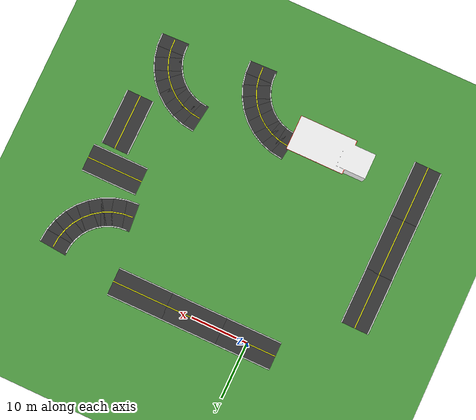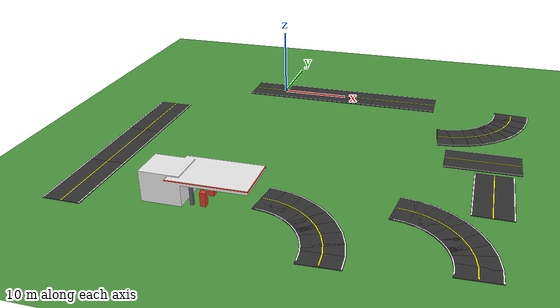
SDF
<sdf version="1.7">
 <model name="gas_station_2">
  <static>true</static>
  <model name="ground_plane">
   <static>1</static>
   <link name="link">
    <collision name="collision">
     <geometry><plane><normal>0 0 1</normal><size>100 100</size></plane></geometry>
     <surface>
      <contact><collide_bitmask>65535</collide_bitmask></contact>
      <friction><ode><mu>100</mu><mu2>50</mu2></ode></friction>
     </surface>
    </collision>
    <visual name="visual">
     <cast_shadows>0</cast_shadows>
     <geometry><plane><normal>0 0 1</normal><size>100 100</size></plane></geometry>
     <material>
      <script><uri>file://media/materials/scripts/gazebo.material</uri><name>Gazebo/Grass</name></script>
     </material>
    </visual>
   </link>
  </model>
  <model name="road_straight">
   <static>1</static>
   <link name="link">
    <collision name="collision"><geometry><box><size>10 5 0.1</size></box></geometry></collision>
    <visual name="visual_surface">
     <geometry><box><size>10 5 0.1</size></box></geometry>
     <material>
      <ambient>0.2 0.2 0.2 1</ambient>
      <diffuse>0.2 0.2 0.2 1</diffuse>
      <specular>0.1 0.1 0.1 1</specular>
     </material>
    </visual>
    <visual name="visual_center_line">
     <pose>0 0 0.051 0 -0 0</pose>
     <geometry><box><size>10 0.15 0.001</size></box></geometry>
     <material><ambient>1 1 0 1</ambient><diffuse>1 1 0 1</diffuse></material>
    </visual>
    <visual name="visual_left_line">
     <pose>0 2.4 0.051 0 -0 0</pose>
     <geometry><box><size>10 0.15 0.001</size></box></geometry>
     <material><ambient>1 1 1 1</ambient><diffuse>1 1 1 1</diffuse></material>
    </visual>
    <visual name="visual_right_line">
     <pose>0 -2.4 0.051 0 -0 0</pose>
     <geometry><box><size>10 0.15 0.001</size></box></geometry>
     <material><ambient>1 1 1 1</ambient><diffuse>1 1 1 1</diffuse></material>
    </visual>
   </link>
   <pose>-0.248347 0.000542 0 0 -0 0</pose>
  </model>
  <model name="road_straight_clone">
   <static>1</static>
   <link name="link">
    <collision name="collision"><geometry><box><size>10 5 0.1</size></box></geometry></collision>
    <visual name="visual_surface">
     <geometry><box><size>10 5 0.1</size></box></geometry>
     <material>
      <ambient>0.2 0.2 0.2 1</ambient>
      <diffuse>0.2 0.2 0.2 1</diffuse>
      <specular>0.1 0.1 0.1 1</specular>
     </material>
    </visual>
    <visual name="visual_center_line">
     <pose>0 0 0.051 0 -0 0</pose>
     <geometry><box><size>10 0.15 0.001</size></box></geometry>
     <material><ambient>1 1 0 1</ambient><diffuse>1 1 0 1</diffuse></material>
    </visual>
    <visual name="visual_left_line">
     <pose>0 2.4 0.051 0 -0 0</pose>
     <geometry><box><size>10 0.15 0.001</size></box></geometry>
     <material><ambient>1 1 1 1</ambient><diffuse>1 1 1 1</diffuse></material>
    </visual>
    <visual name="visual_right_line">
     <pose>0 -2.4 0.051 0 -0 0</pose>
     <geometry><box><size>10 0.15 0.001</size></box></geometry>
     <material><ambient>1 1 1 1</ambient><diffuse>1 1 1 1</diffuse></material>
    </visual>
   </link>
   <pose>9.70219 0.000539 0 0 -0 0</pose>
  </model>
  <model name="road_straight_clone_clone">
   <static>1</static>
   <link name="link">
    <collision name="collision"><geometry><box><size>10 5 0.1</size></box></geometry></collision>
    <visual name="visual_surface">
     <geometry><box><size>10 5 0.1</size></box></geometry>
     <material>
      <ambient>0.2 0.2 0.2 1</ambient>
      <diffuse>0.2 0.2 0.2 1</diffuse>
      <specular>0.1 0.1 0.1 1</specular>
     </material>
    </visual>
    <visual name="visual_center_line">
     <pose>0 0 0.051 0 -0 0</pose>
     <geometry><box><size>10 0.15 0.001</size></box></geometry>
     <material><ambient>1 1 0 1</ambient><diffuse>1 1 0 1</diffuse></material>
    </visual>
    <visual name="visual_left_line">
     <pose>0 2.4 0.051 0 -0 0</pose>
     <geometry><box><size>10 0.15 0.001</size></box></geometry>
     <material><ambient>1 1 1 1</ambient><diffuse>1 1 1 1</diffuse></material>
    </visual>
    <visual name="visual_right_line">
     <pose>0 -2.4 0.051 0 -0 0</pose>
     <geometry><box><size>10 0.15 0.001</size></box></geometry>
     <material><ambient>1 1 1 1</ambient><diffuse>1 1 1 1</diffuse></material>
    </visual>
   </link>
   <pose>19.59 0.00396 0 0 -0 0</pose>
  </model>
  <model name="road_curved">
   <static>1</static>
   <link name="link">
    <visual name="visual_segment_0">
     <pose>0.8716 0.0381 0 0 -0 0.0873</pose>
     <geometry><box><size>2.2789 5 0.1</size></box></geometry>
     <material>
      <ambient>0.2 0.2 0.2 1</ambient>
      <diffuse>0.2 0.2 0.2 1</diffuse>
      <specular>0.1 0.1 0.1 1</specular>
     </material>
    </visual>
    <collision name="collision_segment_0">
     <pose>0.8716 0.0381 0 0 -0 0.0873</pose>
     <geometry><box><size>2.2789 5 0.1</size></box></geometry>
    </collision>
    <visual name="visual_center_line_0">
     <pose>0.8716 0.0381 0.051 0 -0 0.0873</pose>
     <geometry><box><size>1.7931 0.15 0.001</size></box></geometry>
     <material><ambient>1 1 0 1</ambient><diffuse>1 1 0 1</diffuse></material>
    </visual>
    <visual name="visual_inner_line_0">
     <pose>0.6624 2.4289 0.051 0 -0 0.0873</pose>
     <geometry><box><size>1.3748 0.15 0.001</size></box></geometry>
     <material><ambient>1 1 1 1</ambient><diffuse>1 1 1 1</diffuse></material>
    </visual>
    <visual name="visual_outer_line_0">
     <pose>1.0807 -2.3528 0.051 0 -0 0.0873</pose>
     <geometry><box><size>2.2115 0.15 0.001</size></box></geometry>
     <material><ambient>1 1 1 1</ambient><diffuse>1 1 1 1</diffuse></material>
    </visual>
    <visual name="visual_segment_1">
     <pose>2.5882 0.3407 0 0 -0 0.2618</pose>
     <geometry><box><size>2.2789 5 0.1</size></box></geometry>
     <material>
      <ambient>0.2 0.2 0.2 1</ambient>
      <diffuse>0.2 0.2 0.2 1</diffuse>
      <specular>0.1 0.1 0.1 1</specular>
     </material>
    </visual>
    <collision name="collision_segment_1">
     <pose>2.5882 0.3407 0 0 -0 0.2618</pose>
     <geometry><box><size>2.2789 5 0.1</size></box></geometry>
    </collision>
    <visual name="visual_center_line_1">
     <pose>2.5882 0.3407 0.051 0 -0 0.2618</pose>
     <geometry><box><size>1.7931 0.15 0.001</size></box></geometry>
     <material><ambient>1 1 0 1</ambient><diffuse>1 1 0 1</diffuse></material>
    </visual>
    <visual name="visual_inner_line_1">
     <pose>1.967 2.659 0.051 0 -0 0.2618</pose>
     <geometry><box><size>1.3748 0.15 0.001</size></box></geometry>
     <material><ambient>1 1 1 1</ambient><diffuse>1 1 1 1</diffuse></material>
    </visual>
    <visual name="visual_outer_line_1">
     <pose>3.2094 -1.9775 0.051 0 -0 0.2618</pose>
     <geometry><box><size>2.2115 0.15 0.001</size></box></geometry>
     <material><ambient>1 1 1 1</ambient><diffuse>1 1 1 1</diffuse></material>
    </visual>
    <visual name="visual_segment_2">
     <pose>4.2262 0.9369 0 0 -0 0.4363</pose>
     <geometry><box><size>2.2789 5 0.1</size></box></geometry>
     <material>
      <ambient>0.2 0.2 0.2 1</ambient>
      <diffuse>0.2 0.2 0.2 1</diffuse>
      <specular>0.1 0.1 0.1 1</specular>
     </material>
    </visual>
    <collision name="collision_segment_2">
     <pose>4.2262 0.9369 0 0 -0 0.4363</pose>
     <geometry><box><size>2.2789 5 0.1</size></box></geometry>
    </collision>
    <visual name="visual_center_line_2">
     <pose>4.2262 0.9369 0.051 0 -0 0.4363</pose>
     <geometry><box><size>1.7931 0.15 0.001</size></box></geometry>
     <material><ambient>1 1 0 1</ambient><diffuse>1 1 0 1</diffuse></material>
    </visual>
    <visual name="visual_inner_line_2">
     <pose>3.2119 3.1121 0.051 0 -0 0.4363</pose>
     <geometry><box><size>1.3748 0.15 0.001</size></box></geometry>
     <material><ambient>1 1 1 1</ambient><diffuse>1 1 1 1</diffuse></material>
    </visual>
    <visual name="visual_outer_line_2">
     <pose>5.2405 -1.2382 0.051 0 -0 0.4363</pose>
     <geometry><box><size>2.2115 0.15 0.001</size></box></geometry>
     <material><ambient>1 1 1 1</ambient><diffuse>1 1 1 1</diffuse></material>
    </visual>
    <visual name="visual_segment_3">
     <pose>5.7358 1.8085 0 0 -0 0.6109</pose>
     <geometry><box><size>2.2789 5 0.1</size></box></geometry>
     <material>
      <ambient>0.2 0.2 0.2 1</ambient>
      <diffuse>0.2 0.2 0.2 1</diffuse>
      <specular>0.1 0.1 0.1 1</specular>
     </material>
    </visual>
    <collision name="collision_segment_3">
     <pose>5.7358 1.8085 0 0 -0 0.6109</pose>
     <geometry><box><size>2.2789 5 0.1</size></box></geometry>
    </collision>
    <visual name="visual_center_line_3">
     <pose>5.7358 1.8085 0.051 0 -0 0.6109</pose>
     <geometry><box><size>1.7931 0.15 0.001</size></box></geometry>
     <material><ambient>1 1 0 1</ambient><diffuse>1 1 0 1</diffuse></material>
    </visual>
    <visual name="visual_inner_line_3">
     <pose>4.3592 3.7744 0.051 0 -0 0.6109</pose>
     <geometry><box><size>1.3748 0.15 0.001</size></box></geometry>
     <material><ambient>1 1 1 1</ambient><diffuse>1 1 1 1</diffuse></material>
    </visual>
    <visual name="visual_outer_line_3">
     <pose>7.1123 -0.1575 0.051 0 -0 0.6109</pose>
     <geometry><box><size>2.2115 0.15 0.001</size></box></geometry>
     <material><ambient>1 1 1 1</ambient><diffuse>1 1 1 1</diffuse></material>
    </visual>
    <visual name="visual_segment_4">
     <pose>7.0711 2.9289 0 0 -0 0.7854</pose>
     <geometry><box><size>2.2789 5 0.1</size></box></geometry>
     <material>
      <ambient>0.2 0.2 0.2 1</ambient>
      <diffuse>0.2 0.2 0.2 1</diffuse>
      <specular>0.1 0.1 0.1 1</specular>
     </material>
    </visual>
    <collision name="collision_segment_4">
     <pose>7.0711 2.9289 0 0 -0 0.7854</pose>
     <geometry><box><size>2.2789 5 0.1</size></box></geometry>
    </collision>
    <visual name="visual_center_line_4">
     <pose>7.0711 2.9289 0.051 0 -0 0.7854</pose>
     <geometry><box><size>1.7931 0.15 0.001</size></box></geometry>
     <material><ambient>1 1 0 1</ambient><diffuse>1 1 0 1</diffuse></material>
    </visual>
    <visual name="visual_inner_line_4">
     <pose>5.374 4.626 0.051 0 -0 0.7854</pose>
     <geometry><box><size>1.3748 0.15 0.001</size></box></geometry>
     <material><ambient>1 1 1 1</ambient><diffuse>1 1 1 1</diffuse></material>
    </visual>
    <visual name="visual_outer_line_4">
     <pose>8.7681 1.2319 0.051 0 -0 0.7854</pose>
     <geometry><box><size>2.2115 0.15 0.001</size></box></geometry>
     <material><ambient>1 1 1 1</ambient><diffuse>1 1 1 1</diffuse></material>
    </visual>
    <visual name="visual_segment_5">
     <pose>8.1915 4.2642 0 0 -0 0.9599</pose>
     <geometry><box><size>2.2789 5 0.1</size></box></geometry>
     <material>
      <ambient>0.2 0.2 0.2 1</ambient>
      <diffuse>0.2 0.2 0.2 1</diffuse>
      <specular>0.1 0.1 0.1 1</specular>
     </material>
    </visual>
    <collision name="collision_segment_5">
     <pose>8.1915 4.2642 0 0 -0 0.9599</pose>
     <geometry><box><size>2.2789 5 0.1</size></box></geometry>
    </collision>
    <visual name="visual_center_line_5">
     <pose>8.1915 4.2642 0.051 0 -0 0.9599</pose>
     <geometry><box><size>1.7931 0.15 0.001</size></box></geometry>
     <material><ambient>1 1 0 1</ambient><diffuse>1 1 0 1</diffuse></material>
    </visual>
    <visual name="visual_inner_line_5">
     <pose>6.2256 5.6408 0.051 0 -0 0.9599</pose>
     <geometry><box><size>1.3748 0.15 0.001</size></box></geometry>
     <material><ambient>1 1 1 1</ambient><diffuse>1 1 1 1</diffuse></material>
    </visual>
    <visual name="visual_outer_line_5">
     <pose>10.1575 2.8877 0.051 0 -0 0.9599</pose>
     <geometry><box><size>2.2115 0.15 0.001</size></box></geometry>
     <material><ambient>1 1 1 1</ambient><diffuse>1 1 1 1</diffuse></material>
    </visual>
    <visual name="visual_segment_6">
     <pose>9.0631 5.7738 0 0 -0 1.1345</pose>
     <geometry><box><size>2.2789 5 0.1</size></box></geometry>
     <material>
      <ambient>0.2 0.2 0.2 1</ambient>
      <diffuse>0.2 0.2 0.2 1</diffuse>
      <specular>0.1 0.1 0.1 1</specular>
     </material>
    </visual>
    <collision name="collision_segment_6">
     <pose>9.0631 5.7738 0 0 -0 1.1345</pose>
     <geometry><box><size>2.2789 5 0.1</size></box></geometry>
    </collision>
    <visual name="visual_center_line_6">
     <pose>9.0631 5.7738 0.051 0 -0 1.1345</pose>
     <geometry><box><size>1.7931 0.15 0.001</size></box></geometry>
     <material><ambient>1 1 0 1</ambient><diffuse>1 1 0 1</diffuse></material>
    </visual>
    <visual name="visual_inner_line_6">
     <pose>6.8879 6.7881 0.051 0 -0 1.1345</pose>
     <geometry><box><size>1.3748 0.15 0.001</size></box></geometry>
     <material><ambient>1 1 1 1</ambient><diffuse>1 1 1 1</diffuse></material>
    </visual>
    <visual name="visual_outer_line_6">
     <pose>11.2382 4.7595 0.051 0 -0 1.1345</pose>
     <geometry><box><size>2.2115 0.15 0.001</size></box></geometry>
     <material><ambient>1 1 1 1</ambient><diffuse>1 1 1 1</diffuse></material>
    </visual>
    <visual name="visual_segment_7">
     <pose>9.6593 7.4118 0 0 -0 1.309</pose>
     <geometry><box><size>2.2789 5 0.1</size></box></geometry>
     <material>
      <ambient>0.2 0.2 0.2 1</ambient>
      <diffuse>0.2 0.2 0.2 1</diffuse>
      <specular>0.1 0.1 0.1 1</specular>
     </material>
    </visual>
    <collision name="collision_segment_7">
     <pose>9.6593 7.4118 0 0 -0 1.309</pose>
     <geometry><box><size>2.2789 5 0.1</size></box></geometry>
    </collision>
    <visual name="visual_center_line_7">
     <pose>9.6593 7.4118 0.051 0 -0 1.309</pose>
     <geometry><box><size>1.7931 0.15 0.001</size></box></geometry>
     <material><ambient>1 1 0 1</ambient><diffuse>1 1 0 1</diffuse></material>
    </visual>
    <visual name="visual_inner_line_7">
     <pose>7.341 8.033 0.051 0 -0 1.309</pose>
     <geometry><box><size>1.3748 0.15 0.001</size></box></geometry>
     <material><ambient>1 1 1 1</ambient><diffuse>1 1 1 1</diffuse></material>
    </visual>
    <visual name="visual_outer_line_7">
     <pose>11.9775 6.7906 0.051 0 -0 1.309</pose>
     <geometry><box><size>2.2115 0.15 0.001</size></box></geometry>
     <material><ambient>1 1 1 1</ambient><diffuse>1 1 1 1</diffuse></material>
    </visual>
    <visual name="visual_segment_8">
     <pose>9.9619 9.1284 0 0 -0 1.4835</pose>
     <geometry><box><size>2.2789 5 0.1</size></box></geometry>
     <material>
      <ambient>0.2 0.2 0.2 1</ambient>
      <diffuse>0.2 0.2 0.2 1</diffuse>
      <specular>0.1 0.1 0.1 1</specular>
     </material>
    </visual>
    <collision name="collision_segment_8">
     <pose>9.9619 9.1284 0 0 -0 1.4835</pose>
     <geometry><box><size>2.2789 5 0.1</size></box></geometry>
    </collision>
    <visual name="visual_center_line_8">
     <pose>9.9619 9.1284 0.051 0 -0 1.4835</pose>
     <geometry><box><size>1.7931 0.15 0.001</size></box></geometry>
     <material><ambient>1 1 0 1</ambient><diffuse>1 1 0 1</diffuse></material>
    </visual>
    <visual name="visual_inner_line_8">
     <pose>7.5711 9.3376 0.051 0 -0 1.4835</pose>
     <geometry><box><size>1.3748 0.15 0.001</size></box></geometry>
     <material><ambient>1 1 1 1</ambient><diffuse>1 1 1 1</diffuse></material>
    </visual>
    <visual name="visual_outer_line_8">
     <pose>12.3528 8.9193 0.051 0 -0 1.4835</pose>
     <geometry><box><size>2.2115 0.15 0.001</size></box></geometry>
     <material><ambient>1 1 1 1</ambient><diffuse>1 1 1 1</diffuse></material>
    </visual>
   </link>
   <pose>26.2003 -11.0275 0 0 -0 0</pose>
  </model>
  <model name="road_straight_clone_clone_clone">
   <static>1</static>
   <link name="link">
    <collision name="collision"><geometry><box><size>10 5 0.1</size></box></geometry></collision>
    <visual name="visual_surface">
     <geometry><box><size>10 5 0.1</size></box></geometry>
     <material>
      <ambient>0.2 0.2 0.2 1</ambient>
      <diffuse>0.2 0.2 0.2 1</diffuse>
      <specular>0.1 0.1 0.1 1</specular>
     </material>
    </visual>
    <visual name="visual_center_line">
     <pose>0 0 0.051 0 -0 0</pose>
     <geometry><box><size>10 0.15 0.001</size></box></geometry>
     <material><ambient>1 1 0 1</ambient><diffuse>1 1 0 1</diffuse></material>
    </visual>
    <visual name="visual_left_line">
     <pose>0 2.4 0.051 0 -0 0</pose>
     <geometry><box><size>10 0.15 0.001</size></box></geometry>
     <material><ambient>1 1 1 1</ambient><diffuse>1 1 1 1</diffuse></material>
    </visual>
    <visual name="visual_right_line">
     <pose>0 -2.4 0.051 0 -0 0</pose>
     <geometry><box><size>10 0.15 0.001</size></box></geometry>
     <material><ambient>1 1 1 1</ambient><diffuse>1 1 1 1</diffuse></material>
    </visual>
   </link>
   <pose>32.4471 -17.1551 0 0 -0 0</pose>
  </model>
  <model name="road_straight_clone_clone_clone_clone">
   <static>1</static>
   <link name="link">
    <collision name="collision"><geometry><box><size>10 5 0.1</size></box></geometry></collision>
    <visual name="visual_surface">
     <geometry><box><size>10 5 0.1</size></box></geometry>
     <material>
      <ambient>0.2 0.2 0.2 1</ambient>
      <diffuse>0.2 0.2 0.2 1</diffuse>
      <specular>0.1 0.1 0.1 1</specular>
     </material>
    </visual>
    <visual name="visual_center_line">
     <pose>0 0 0.051 0 -0 0</pose>
     <geometry><box><size>10 0.15 0.001</size></box></geometry>
     <material><ambient>1 1 0 1</ambient><diffuse>1 1 0 1</diffuse></material>
    </visual>
    <visual name="visual_left_line">
     <pose>0 2.4 0.051 0 -0 0</pose>
     <geometry><box><size>10 0.15 0.001</size></box></geometry>
     <material><ambient>1 1 1 1</ambient><diffuse>1 1 1 1</diffuse></material>
    </visual>
    <visual name="visual_right_line">
     <pose>0 -2.4 0.051 0 -0 0</pose>
     <geometry><box><size>10 0.15 0.001</size></box></geometry>
     <material><ambient>1 1 1 1</ambient><diffuse>1 1 1 1</diffuse></material>
    </visual>
   </link>
   <pose>33.9162 -25.3829 0 0 -0 1.56099</pose>
  </model>
  <model name="road_curved_clone">
   <static>1</static>
   <link name="link">
    <visual name="visual_segment_0">
     <pose>0.8716 0.0381 0 0 -0 0.0873</pose>
     <geometry><box><size>2.2789 5 0.1</size></box></geometry>
     <material>
      <ambient>0.2 0.2 0.2 1</ambient>
      <diffuse>0.2 0.2 0.2 1</diffuse>
      <specular>0.1 0.1 0.1 1</specular>
     </material>
    </visual>
    <collision name="collision_segment_0">
     <pose>0.8716 0.0381 0 0 -0 0.0873</pose>
     <geometry><box><size>2.2789 5 0.1</size></box></geometry>
    </collision>
    <visual name="visual_center_line_0">
     <pose>0.8716 0.0381 0.051 0 -0 0.0873</pose>
     <geometry><box><size>1.7931 0.15 0.001</size></box></geometry>
     <material><ambient>1 1 0 1</ambient><diffuse>1 1 0 1</diffuse></material>
    </visual>
    <visual name="visual_inner_line_0">
     <pose>0.6624 2.4289 0.051 0 -0 0.0873</pose>
     <geometry><box><size>1.3748 0.15 0.001</size></box></geometry>
     <material><ambient>1 1 1 1</ambient><diffuse>1 1 1 1</diffuse></material>
    </visual>
    <visual name="visual_outer_line_0">
     <pose>1.0807 -2.3528 0.051 0 -0 0.0873</pose>
     <geometry><box><size>2.2115 0.15 0.001</size></box></geometry>
     <material><ambient>1 1 1 1</ambient><diffuse>1 1 1 1</diffuse></material>
    </visual>
    <visual name="visual_segment_1">
     <pose>2.5882 0.3407 0 0 -0 0.2618</pose>
     <geometry><box><size>2.2789 5 0.1</size></box></geometry>
     <material>
      <ambient>0.2 0.2 0.2 1</ambient>
      <diffuse>0.2 0.2 0.2 1</diffuse>
      <specular>0.1 0.1 0.1 1</specular>
     </material>
    </visual>
    <collision name="collision_segment_1">
     <pose>2.5882 0.3407 0 0 -0 0.2618</pose>
     <geometry><box><size>2.2789 5 0.1</size></box></geometry>
    </collision>
    <visual name="visual_center_line_1">
     <pose>2.5882 0.3407 0.051 0 -0 0.2618</pose>
     <geometry><box><size>1.7931 0.15 0.001</size></box></geometry>
     <material><ambient>1 1 0 1</ambient><diffuse>1 1 0 1</diffuse></material>
    </visual>
    <visual name="visual_inner_line_1">
     <pose>1.967 2.659 0.051 0 -0 0.2618</pose>
     <geometry><box><size>1.3748 0.15 0.001</size></box></geometry>
     <material><ambient>1 1 1 1</ambient><diffuse>1 1 1 1</diffuse></material>
    </visual>
    <visual name="visual_outer_line_1">
     <pose>3.2094 -1.9775 0.051 0 -0 0.2618</pose>
     <geometry><box><size>2.2115 0.15 0.001</size></box></geometry>
     <material><ambient>1 1 1 1</ambient><diffuse>1 1 1 1</diffuse></material>
    </visual>
    <visual name="visual_segment_2">
     <pose>4.2262 0.9369 0 0 -0 0.4363</pose>
     <geometry><box><size>2.2789 5 0.1</size></box></geometry>
     <material>
      <ambient>0.2 0.2 0.2 1</ambient>
      <diffuse>0.2 0.2 0.2 1</diffuse>
      <specular>0.1 0.1 0.1 1</specular>
     </material>
    </visual>
    <collision name="collision_segment_2">
     <pose>4.2262 0.9369 0 0 -0 0.4363</pose>
     <geometry><box><size>2.2789 5 0.1</size></box></geometry>
    </collision>
    <visual name="visual_center_line_2">
     <pose>4.2262 0.9369 0.051 0 -0 0.4363</pose>
     <geometry><box><size>1.7931 0.15 0.001</size></box></geometry>
     <material><ambient>1 1 0 1</ambient><diffuse>1 1 0 1</diffuse></material>
    </visual>
    <visual name="visual_inner_line_2">
     <pose>3.2119 3.1121 0.051 0 -0 0.4363</pose>
     <geometry><box><size>1.3748 0.15 0.001</size></box></geometry>
     <material><ambient>1 1 1 1</ambient><diffuse>1 1 1 1</diffuse></material>
    </visual>
    <visual name="visual_outer_line_2">
     <pose>5.2405 -1.2382 0.051 0 -0 0.4363</pose>
     <geometry><box><size>2.2115 0.15 0.001</size></box></geometry>
     <material><ambient>1 1 1 1</ambient><diffuse>1 1 1 1</diffuse></material>
    </visual>
    <visual name="visual_segment_3">
     <pose>5.7358 1.8085 0 0 -0 0.6109</pose>
     <geometry><box><size>2.2789 5 0.1</size></box></geometry>
     <material>
      <ambient>0.2 0.2 0.2 1</ambient>
      <diffuse>0.2 0.2 0.2 1</diffuse>
      <specular>0.1 0.1 0.1 1</specular>
     </material>
    </visual>
    <collision name="collision_segment_3">
     <pose>5.7358 1.8085 0 0 -0 0.6109</pose>
     <geometry><box><size>2.2789 5 0.1</size></box></geometry>
    </collision>
    <visual name="visual_center_line_3">
     <pose>5.7358 1.8085 0.051 0 -0 0.6109</pose>
     <geometry><box><size>1.7931 0.15 0.001</size></box></geometry>
     <material><ambient>1 1 0 1</ambient><diffuse>1 1 0 1</diffuse></material>
    </visual>
    <visual name="visual_inner_line_3">
     <pose>4.3592 3.7744 0.051 0 -0 0.6109</pose>
     <geometry><box><size>1.3748 0.15 0.001</size></box></geometry>
     <material><ambient>1 1 1 1</ambient><diffuse>1 1 1 1</diffuse></material>
    </visual>
    <visual name="visual_outer_line_3">
     <pose>7.1123 -0.1575 0.051 0 -0 0.6109</pose>
     <geometry><box><size>2.2115 0.15 0.001</size></box></geometry>
     <material><ambient>1 1 1 1</ambient><diffuse>1 1 1 1</diffuse></material>
    </visual>
    <visual name="visual_segment_4">
     <pose>7.0711 2.9289 0 0 -0 0.7854</pose>
     <geometry><box><size>2.2789 5 0.1</size></box></geometry>
     <material>
      <ambient>0.2 0.2 0.2 1</ambient>
      <diffuse>0.2 0.2 0.2 1</diffuse>
      <specular>0.1 0.1 0.1 1</specular>
     </material>
    </visual>
    <collision name="collision_segment_4">
     <pose>7.0711 2.9289 0 0 -0 0.7854</pose>
     <geometry><box><size>2.2789 5 0.1</size></box></geometry>
    </collision>
    <visual name="visual_center_line_4">
     <pose>7.0711 2.9289 0.051 0 -0 0.7854</pose>
     <geometry><box><size>1.7931 0.15 0.001</size></box></geometry>
     <material><ambient>1 1 0 1</ambient><diffuse>1 1 0 1</diffuse></material>
    </visual>
    <visual name="visual_inner_line_4">
     <pose>5.374 4.626 0.051 0 -0 0.7854</pose>
     <geometry><box><size>1.3748 0.15 0.001</size></box></geometry>
     <material><ambient>1 1 1 1</ambient><diffuse>1 1 1 1</diffuse></material>
    </visual>
    <visual name="visual_outer_line_4">
     <pose>8.7681 1.2319 0.051 0 -0 0.7854</pose>
     <geometry><box><size>2.2115 0.15 0.001</size></box></geometry>
     <material><ambient>1 1 1 1</ambient><diffuse>1 1 1 1</diffuse></material>
    </visual>
    <visual name="visual_segment_5">
     <pose>8.1915 4.2642 0 0 -0 0.9599</pose>
     <geometry><box><size>2.2789 5 0.1</size></box></geometry>
     <material>
      <ambient>0.2 0.2 0.2 1</ambient>
      <diffuse>0.2 0.2 0.2 1</diffuse>
      <specular>0.1 0.1 0.1 1</specular>
     </material>
    </visual>
    <collision name="collision_segment_5">
     <pose>8.1915 4.2642 0 0 -0 0.9599</pose>
     <geometry><box><size>2.2789 5 0.1</size></box></geometry>
    </collision>
    <visual name="visual_center_line_5">
     <pose>8.1915 4.2642 0.051 0 -0 0.9599</pose>
     <geometry><box><size>1.7931 0.15 0.001</size></box></geometry>
     <material><ambient>1 1 0 1</ambient><diffuse>1 1 0 1</diffuse></material>
    </visual>
    <visual name="visual_inner_line_5">
     <pose>6.2256 5.6408 0.051 0 -0 0.9599</pose>
     <geometry><box><size>1.3748 0.15 0.001</size></box></geometry>
     <material><ambient>1 1 1 1</ambient><diffuse>1 1 1 1</diffuse></material>
    </visual>
    <visual name="visual_outer_line_5">
     <pose>10.1575 2.8877 0.051 0 -0 0.9599</pose>
     <geometry><box><size>2.2115 0.15 0.001</size></box></geometry>
     <material><ambient>1 1 1 1</ambient><diffuse>1 1 1 1</diffuse></material>
    </visual>
    <visual name="visual_segment_6">
     <pose>9.0631 5.7738 0 0 -0 1.1345</pose>
     <geometry><box><size>2.2789 5 0.1</size></box></geometry>
     <material>
      <ambient>0.2 0.2 0.2 1</ambient>
      <diffuse>0.2 0.2 0.2 1</diffuse>
      <specular>0.1 0.1 0.1 1</specular>
     </material>
    </visual>
    <collision name="collision_segment_6">
     <pose>9.0631 5.7738 0 0 -0 1.1345</pose>
     <geometry><box><size>2.2789 5 0.1</size></box></geometry>
    </collision>
    <visual name="visual_center_line_6">
     <pose>9.0631 5.7738 0.051 0 -0 1.1345</pose>
     <geometry><box><size>1.7931 0.15 0.001</size></box></geometry>
     <material><ambient>1 1 0 1</ambient><diffuse>1 1 0 1</diffuse></material>
    </visual>
    <visual name="visual_inner_line_6">
     <pose>6.8879 6.7881 0.051 0 -0 1.1345</pose>
     <geometry><box><size>1.3748 0.15 0.001</size></box></geometry>
     <material><ambient>1 1 1 1</ambient><diffuse>1 1 1 1</diffuse></material>
    </visual>
    <visual name="visual_outer_line_6">
     <pose>11.2382 4.7595 0.051 0 -0 1.1345</pose>
     <geometry><box><size>2.2115 0.15 0.001</size></box></geometry>
     <material><ambient>1 1 1 1</ambient><diffuse>1 1 1 1</diffuse></material>
    </visual>
    <visual name="visual_segment_7">
     <pose>9.6593 7.4118 0 0 -0 1.309</pose>
     <geometry><box><size>2.2789 5 0.1</size></box></geometry>
     <material>
      <ambient>0.2 0.2 0.2 1</ambient>
      <diffuse>0.2 0.2 0.2 1</diffuse>
      <specular>0.1 0.1 0.1 1</specular>
     </material>
    </visual>
    <collision name="collision_segment_7">
     <pose>9.6593 7.4118 0 0 -0 1.309</pose>
     <geometry><box><size>2.2789 5 0.1</size></box></geometry>
    </collision>
    <visual name="visual_center_line_7">
     <pose>9.6593 7.4118 0.051 0 -0 1.309</pose>
     <geometry><box><size>1.7931 0.15 0.001</size></box></geometry>
     <material><ambient>1 1 0 1</ambient><diffuse>1 1 0 1</diffuse></material>
    </visual>
    <visual name="visual_inner_line_7">
     <pose>7.341 8.033 0.051 0 -0 1.309</pose>
     <geometry><box><size>1.3748 0.15 0.001</size></box></geometry>
     <material><ambient>1 1 1 1</ambient><diffuse>1 1 1 1</diffuse></material>
    </visual>
    <visual name="visual_outer_line_7">
     <pose>11.9775 6.7906 0.051 0 -0 1.309</pose>
     <geometry><box><size>2.2115 0.15 0.001</size></box></geometry>
     <material><ambient>1 1 1 1</ambient><diffuse>1 1 1 1</diffuse></material>
    </visual>
    <visual name="visual_segment_8">
     <pose>9.9619 9.1284 0 0 -0 1.4835</pose>
     <geometry><box><size>2.2789 5 0.1</size></box></geometry>
     <material>
      <ambient>0.2 0.2 0.2 1</ambient>
      <diffuse>0.2 0.2 0.2 1</diffuse>
      <specular>0.1 0.1 0.1 1</specular>
     </material>
    </visual>
    <collision name="collision_segment_8">
     <pose>9.9619 9.1284 0 0 -0 1.4835</pose>
     <geometry><box><size>2.2789 5 0.1</size></box></geometry>
    </collision>
    <visual name="visual_center_line_8">
     <pose>9.9619 9.1284 0.051 0 -0 1.4835</pose>
     <geometry><box><size>1.7931 0.15 0.001</size></box></geometry>
     <material><ambient>1 1 0 1</ambient><diffuse>1 1 0 1</diffuse></material>
    </visual>
    <visual name="visual_inner_line_8">
     <pose>7.5711 9.3376 0.051 0 -0 1.4835</pose>
     <geometry><box><size>1.3748 0.15 0.001</size></box></geometry>
     <material><ambient>1 1 1 1</ambient><diffuse>1 1 1 1</diffuse></material>
    </visual>
    <visual name="visual_outer_line_8">
     <pose>12.3528 8.9193 0.051 0 -0 1.4835</pose>
     <geometry><box><size>2.2115 0.15 0.001</size></box></geometry>
     <material><ambient>1 1 1 1</ambient><diffuse>1 1 1 1</diffuse></material>
    </visual>
   </link>
   <pose>32.5922 -41.5973 0 0 -0 1.51926</pose>
  </model>
  <model name="road_curved_clone_0">
   <static>1</static>
   <link name="link">
    <visual name="visual_segment_0">
     <pose>0.8716 0.0381 0 0 -0 0.0873</pose>
     <geometry><box><size>2.2789 5 0.1</size></box></geometry>
     <material>
      <ambient>0.2 0.2 0.2 1</ambient>
      <diffuse>0.2 0.2 0.2 1</diffuse>
      <specular>0.1 0.1 0.1 1</specular>
     </material>
    </visual>
    <collision name="collision_segment_0">
     <pose>0.8716 0.0381 0 0 -0 0.0873</pose>
     <geometry><box><size>2.2789 5 0.1</size></box></geometry>
    </collision>
    <visual name="visual_center_line_0">
     <pose>0.8716 0.0381 0.051 0 -0 0.0873</pose>
     <geometry><box><size>1.7931 0.15 0.001</size></box></geometry>
     <material><ambient>1 1 0 1</ambient><diffuse>1 1 0 1</diffuse></material>
    </visual>
    <visual name="visual_inner_line_0">
     <pose>0.6624 2.4289 0.051 0 -0 0.0873</pose>
     <geometry><box><size>1.3748 0.15 0.001</size></box></geometry>
     <material><ambient>1 1 1 1</ambient><diffuse>1 1 1 1</diffuse></material>
    </visual>
    <visual name="visual_outer_line_0">
     <pose>1.0807 -2.3528 0.051 0 -0 0.0873</pose>
     <geometry><box><size>2.2115 0.15 0.001</size></box></geometry>
     <material><ambient>1 1 1 1</ambient><diffuse>1 1 1 1</diffuse></material>
    </visual>
    <visual name="visual_segment_1">
     <pose>2.5882 0.3407 0 0 -0 0.2618</pose>
     <geometry><box><size>2.2789 5 0.1</size></box></geometry>
     <material>
      <ambient>0.2 0.2 0.2 1</ambient>
      <diffuse>0.2 0.2 0.2 1</diffuse>
      <specular>0.1 0.1 0.1 1</specular>
     </material>
    </visual>
    <collision name="collision_segment_1">
     <pose>2.5882 0.3407 0 0 -0 0.2618</pose>
     <geometry><box><size>2.2789 5 0.1</size></box></geometry>
    </collision>
    <visual name="visual_center_line_1">
     <pose>2.5882 0.3407 0.051 0 -0 0.2618</pose>
     <geometry><box><size>1.7931 0.15 0.001</size></box></geometry>
     <material><ambient>1 1 0 1</ambient><diffuse>1 1 0 1</diffuse></material>
    </visual>
    <visual name="visual_inner_line_1">
     <pose>1.967 2.659 0.051 0 -0 0.2618</pose>
     <geometry><box><size>1.3748 0.15 0.001</size></box></geometry>
     <material><ambient>1 1 1 1</ambient><diffuse>1 1 1 1</diffuse></material>
    </visual>
    <visual name="visual_outer_line_1">
     <pose>3.2094 -1.9775 0.051 0 -0 0.2618</pose>
     <geometry><box><size>2.2115 0.15 0.001</size></box></geometry>
     <material><ambient>1 1 1 1</ambient><diffuse>1 1 1 1</diffuse></material>
    </visual>
    <visual name="visual_segment_2">
     <pose>4.2262 0.9369 0 0 -0 0.4363</pose>
     <geometry><box><size>2.2789 5 0.1</size></box></geometry>
     <material>
      <ambient>0.2 0.2 0.2 1</ambient>
      <diffuse>0.2 0.2 0.2 1</diffuse>
      <specular>0.1 0.1 0.1 1</specular>
     </material>
    </visual>
    <collision name="collision_segment_2">
     <pose>4.2262 0.9369 0 0 -0 0.4363</pose>
     <geometry><box><size>2.2789 5 0.1</size></box></geometry>
    </collision>
    <visual name="visual_center_line_2">
     <pose>4.2262 0.9369 0.051 0 -0 0.4363</pose>
     <geometry><box><size>1.7931 0.15 0.001</size></box></geometry>
     <material><ambient>1 1 0 1</ambient><diffuse>1 1 0 1</diffuse></material>
    </visual>
    <visual name="visual_inner_line_2">
     <pose>3.2119 3.1121 0.051 0 -0 0.4363</pose>
     <geometry><box><size>1.3748 0.15 0.001</size></box></geometry>
     <material><ambient>1 1 1 1</ambient><diffuse>1 1 1 1</diffuse></material>
    </visual>
    <visual name="visual_outer_line_2">
     <pose>5.2405 -1.2382 0.051 0 -0 0.4363</pose>
     <geometry><box><size>2.2115 0.15 0.001</size></box></geometry>
     <material><ambient>1 1 1 1</ambient><diffuse>1 1 1 1</diffuse></material>
    </visual>
    <visual name="visual_segment_3">
     <pose>5.7358 1.8085 0 0 -0 0.6109</pose>
     <geometry><box><size>2.2789 5 0.1</size></box></geometry>
     <material>
      <ambient>0.2 0.2 0.2 1</ambient>
      <diffuse>0.2 0.2 0.2 1</diffuse>
      <specular>0.1 0.1 0.1 1</specular>
     </material>
    </visual>
    <collision name="collision_segment_3">
     <pose>5.7358 1.8085 0 0 -0 0.6109</pose>
     <geometry><box><size>2.2789 5 0.1</size></box></geometry>
    </collision>
    <visual name="visual_center_line_3">
     <pose>5.7358 1.8085 0.051 0 -0 0.6109</pose>
     <geometry><box><size>1.7931 0.15 0.001</size></box></geometry>
     <material><ambient>1 1 0 1</ambient><diffuse>1 1 0 1</diffuse></material>
    </visual>
    <visual name="visual_inner_line_3">
     <pose>4.3592 3.7744 0.051 0 -0 0.6109</pose>
     <geometry><box><size>1.3748 0.15 0.001</size></box></geometry>
     <material><ambient>1 1 1 1</ambient><diffuse>1 1 1 1</diffuse></material>
    </visual>
    <visual name="visual_outer_line_3">
     <pose>7.1123 -0.1575 0.051 0 -0 0.6109</pose>
     <geometry><box><size>2.2115 0.15 0.001</size></box></geometry>
     <material><ambient>1 1 1 1</ambient><diffuse>1 1 1 1</diffuse></material>
    </visual>
    <visual name="visual_segment_4">
     <pose>7.0711 2.9289 0 0 -0 0.7854</pose>
     <geometry><box><size>2.2789 5 0.1</size></box></geometry>
     <material>
      <ambient>0.2 0.2 0.2 1</ambient>
      <diffuse>0.2 0.2 0.2 1</diffuse>
      <specular>0.1 0.1 0.1 1</specular>
     </material>
    </visual>
    <collision name="collision_segment_4">
     <pose>7.0711 2.9289 0 0 -0 0.7854</pose>
     <geometry><box><size>2.2789 5 0.1</size></box></geometry>
    </collision>
    <visual name="visual_center_line_4">
     <pose>7.0711 2.9289 0.051 0 -0 0.7854</pose>
     <geometry><box><size>1.7931 0.15 0.001</size></box></geometry>
     <material><ambient>1 1 0 1</ambient><diffuse>1 1 0 1</diffuse></material>
    </visual>
    <visual name="visual_inner_line_4">
     <pose>5.374 4.626 0.051 0 -0 0.7854</pose>
     <geometry><box><size>1.3748 0.15 0.001</size></box></geometry>
     <material><ambient>1 1 1 1</ambient><diffuse>1 1 1 1</diffuse></material>
    </visual>
    <visual name="visual_outer_line_4">
     <pose>8.7681 1.2319 0.051 0 -0 0.7854</pose>
     <geometry><box><size>2.2115 0.15 0.001</size></box></geometry>
     <material><ambient>1 1 1 1</ambient><diffuse>1 1 1 1</diffuse></material>
    </visual>
    <visual name="visual_segment_5">
     <pose>8.1915 4.2642 0 0 -0 0.9599</pose>
     <geometry><box><size>2.2789 5 0.1</size></box></geometry>
     <material>
      <ambient>0.2 0.2 0.2 1</ambient>
      <diffuse>0.2 0.2 0.2 1</diffuse>
      <specular>0.1 0.1 0.1 1</specular>
     </material>
    </visual>
    <collision name="collision_segment_5">
     <pose>8.1915 4.2642 0 0 -0 0.9599</pose>
     <geometry><box><size>2.2789 5 0.1</size></box></geometry>
    </collision>
    <visual name="visual_center_line_5">
     <pose>8.1915 4.2642 0.051 0 -0 0.9599</pose>
     <geometry><box><size>1.7931 0.15 0.001</size></box></geometry>
     <material><ambient>1 1 0 1</ambient><diffuse>1 1 0 1</diffuse></material>
    </visual>
    <visual name="visual_inner_line_5">
     <pose>6.2256 5.6408 0.051 0 -0 0.9599</pose>
     <geometry><box><size>1.3748 0.15 0.001</size></box></geometry>
     <material><ambient>1 1 1 1</ambient><diffuse>1 1 1 1</diffuse></material>
    </visual>
    <visual name="visual_outer_line_5">
     <pose>10.1575 2.8877 0.051 0 -0 0.9599</pose>
     <geometry><box><size>2.2115 0.15 0.001</size></box></geometry>
     <material><ambient>1 1 1 1</ambient><diffuse>1 1 1 1</diffuse></material>
    </visual>
    <visual name="visual_segment_6">
     <pose>9.0631 5.7738 0 0 -0 1.1345</pose>
     <geometry><box><size>2.2789 5 0.1</size></box></geometry>
     <material>
      <ambient>0.2 0.2 0.2 1</ambient>
      <diffuse>0.2 0.2 0.2 1</diffuse>
      <specular>0.1 0.1 0.1 1</specular>
     </material>
    </visual>
    <collision name="collision_segment_6">
     <pose>9.0631 5.7738 0 0 -0 1.1345</pose>
     <geometry><box><size>2.2789 5 0.1</size></box></geometry>
    </collision>
    <visual name="visual_center_line_6">
     <pose>9.0631 5.7738 0.051 0 -0 1.1345</pose>
     <geometry><box><size>1.7931 0.15 0.001</size></box></geometry>
     <material><ambient>1 1 0 1</ambient><diffuse>1 1 0 1</diffuse></material>
    </visual>
    <visual name="visual_inner_line_6">
     <pose>6.8879 6.7881 0.051 0 -0 1.1345</pose>
     <geometry><box><size>1.3748 0.15 0.001</size></box></geometry>
     <material><ambient>1 1 1 1</ambient><diffuse>1 1 1 1</diffuse></material>
    </visual>
    <visual name="visual_outer_line_6">
     <pose>11.2382 4.7595 0.051 0 -0 1.1345</pose>
     <geometry><box><size>2.2115 0.15 0.001</size></box></geometry>
     <material><ambient>1 1 1 1</ambient><diffuse>1 1 1 1</diffuse></material>
    </visual>
    <visual name="visual_segment_7">
     <pose>9.6593 7.4118 0 0 -0 1.309</pose>
     <geometry><box><size>2.2789 5 0.1</size></box></geometry>
     <material>
      <ambient>0.2 0.2 0.2 1</ambient>
      <diffuse>0.2 0.2 0.2 1</diffuse>
      <specular>0.1 0.1 0.1 1</specular>
     </material>
    </visual>
    <collision name="collision_segment_7">
     <pose>9.6593 7.4118 0 0 -0 1.309</pose>
     <geometry><box><size>2.2789 5 0.1</size></box></geometry>
    </collision>
    <visual name="visual_center_line_7">
     <pose>9.6593 7.4118 0.051 0 -0 1.309</pose>
     <geometry><box><size>1.7931 0.15 0.001</size></box></geometry>
     <material><ambient>1 1 0 1</ambient><diffuse>1 1 0 1</diffuse></material>
    </visual>
    <visual name="visual_inner_line_7">
     <pose>7.341 8.033 0.051 0 -0 1.309</pose>
     <geometry><box><size>1.3748 0.15 0.001</size></box></geometry>
     <material><ambient>1 1 1 1</ambient><diffuse>1 1 1 1</diffuse></material>
    </visual>
    <visual name="visual_outer_line_7">
     <pose>11.9775 6.7906 0.051 0 -0 1.309</pose>
     <geometry><box><size>2.2115 0.15 0.001</size></box></geometry>
     <material><ambient>1 1 1 1</ambient><diffuse>1 1 1 1</diffuse></material>
    </visual>
    <visual name="visual_segment_8">
     <pose>9.9619 9.1284 0 0 -0 1.4835</pose>
     <geometry><box><size>2.2789 5 0.1</size></box></geometry>
     <material>
      <ambient>0.2 0.2 0.2 1</ambient>
      <diffuse>0.2 0.2 0.2 1</diffuse>
      <specular>0.1 0.1 0.1 1</specular>
     </material>
    </visual>
    <collision name="collision_segment_8">
     <pose>9.9619 9.1284 0 0 -0 1.4835</pose>
     <geometry><box><size>2.2789 5 0.1</size></box></geometry>
    </collision>
    <visual name="visual_center_line_8">
     <pose>9.9619 9.1284 0.051 0 -0 1.4835</pose>
     <geometry><box><size>1.7931 0.15 0.001</size></box></geometry>
     <material><ambient>1 1 0 1</ambient><diffuse>1 1 0 1</diffuse></material>
    </visual>
    <visual name="visual_inner_line_8">
     <pose>7.5711 9.3376 0.051 0 -0 1.4835</pose>
     <geometry><box><size>1.3748 0.15 0.001</size></box></geometry>
     <material><ambient>1 1 1 1</ambient><diffuse>1 1 1 1</diffuse></material>
    </visual>
    <visual name="visual_outer_line_8">
     <pose>12.3528 8.9193 0.051 0 -0 1.4835</pose>
     <geometry><box><size>2.2115 0.15 0.001</size></box></geometry>
     <material><ambient>1 1 1 1</ambient><diffuse>1 1 1 1</diffuse></material>
    </visual>
   </link>
   <pose>16.9171 -43.5482 0 0 -0 1.51926</pose>
  </model>
  <model name="road_straight_clone_clone_clone_clone_0">
   <static>1</static>
   <link name="link">
    <collision name="collision"><geometry><box><size>10 5 0.1</size></box></geometry></collision>
    <visual name="visual_surface">
     <geometry><box><size>10 5 0.1</size></box></geometry>
     <material>
      <ambient>0.2 0.2 0.2 1</ambient>
      <diffuse>0.2 0.2 0.2 1</diffuse>
      <specular>0.1 0.1 0.1 1</specular>
     </material>
    </visual>
    <visual name="visual_center_line">
     <pose>0 0 0.051 0 -0 0</pose>
     <geometry><box><size>10 0.15 0.001</size></box></geometry>
     <material><ambient>1 1 0 1</ambient><diffuse>1 1 0 1</diffuse></material>
    </visual>
    <visual name="visual_left_line">
     <pose>0 2.4 0.051 0 -0 0</pose>
     <geometry><box><size>10 0.15 0.001</size></box></geometry>
     <material><ambient>1 1 1 1</ambient><diffuse>1 1 1 1</diffuse></material>
    </visual>
    <visual name="visual_right_line">
     <pose>0 -2.4 0.051 0 -0 0</pose>
     <geometry><box><size>10 0.15 0.001</size></box></geometry>
     <material><ambient>1 1 1 1</ambient><diffuse>1 1 1 1</diffuse></material>
    </visual>
   </link>
   <pose>-15.3771 -14.7604 0 0 -0 1.56099</pose>
  </model>
  <model name="road_straight_clone_clone_clone_clone_0_clone">
   <static>1</static>
   <link name="link">
    <collision name="collision"><geometry><box><size>10 5 0.1</size></box></geometry></collision>
    <visual name="visual_surface">
     <geometry><box><size>10 5 0.1</size></box></geometry>
     <material>
      <ambient>0.2 0.2 0.2 1</ambient>
      <diffuse>0.2 0.2 0.2 1</diffuse>
      <specular>0.1 0.1 0.1 1</specular>
     </material>
    </visual>
    <visual name="visual_center_line">
     <pose>0 0 0.051 0 -0 0</pose>
     <geometry><box><size>10 0.15 0.001</size></box></geometry>
     <material><ambient>1 1 0 1</ambient><diffuse>1 1 0 1</diffuse></material>
    </visual>
    <visual name="visual_left_line">
     <pose>0 2.4 0.051 0 -0 0</pose>
     <geometry><box><size>10 0.15 0.001</size></box></geometry>
     <material><ambient>1 1 1 1</ambient><diffuse>1 1 1 1</diffuse></material>
    </visual>
    <visual name="visual_right_line">
     <pose>0 -2.4 0.051 0 -0 0</pose>
     <geometry><box><size>10 0.15 0.001</size></box></geometry>
     <material><ambient>1 1 1 1</ambient><diffuse>1 1 1 1</diffuse></material>
    </visual>
   </link>
   <pose>-15.4445 -24.6145 0 0 -0 1.56099</pose>
  </model>
  <model name="road_straight_clone_clone_clone_clone_0_clone_clone">
   <static>1</static>
   <link name="link">
    <collision name="collision"><geometry><box><size>10 5 0.1</size></box></geometry></collision>
    <visual name="visual_surface">
     <geometry><box><size>10 5 0.1</size></box></geometry>
     <material>
      <ambient>0.2 0.2 0.2 1</ambient>
      <diffuse>0.2 0.2 0.2 1</diffuse>
      <specular>0.1 0.1 0.1 1</specular>
     </material>
    </visual>
    <visual name="visual_center_line">
     <pose>0 0 0.051 0 -0 0</pose>
     <geometry><box><size>10 0.15 0.001</size></box></geometry>
     <material><ambient>1 1 0 1</ambient><diffuse>1 1 0 1</diffuse></material>
    </visual>
    <visual name="visual_left_line">
     <pose>0 2.4 0.051 0 -0 0</pose>
     <geometry><box><size>10 0.15 0.001</size></box></geometry>
     <material><ambient>1 1 1 1</ambient><diffuse>1 1 1 1</diffuse></material>
    </visual>
    <visual name="visual_right_line">
     <pose>0 -2.4 0.051 0 -0 0</pose>
     <geometry><box><size>10 0.15 0.001</size></box></geometry>
     <material><ambient>1 1 1 1</ambient><diffuse>1 1 1 1</diffuse></material>
    </visual>
   </link>
   <pose>-15.5486 -34.582 0 0 -0 1.56099</pose>
  </model>
  <model name="Gas Station">
   <static>1</static>
   <link name="link">
    <collision name="collision">
     <geometry><mesh><uri>model://gas_station/meshes/gas_station.dae</uri></mesh></geometry>
    </collision>
    <visual name="visual">
     <geometry><mesh><uri>model://gas_station/meshes/gas_station.dae</uri></mesh></geometry>
     <material>
      <script>
       <uri>model://gas_station/materials/scripts</uri>
       <uri>model://gas_station/materials/textures</uri>
       <name>GasStation/Diffuse</name>
      </script>
     </material>
    </visual>
   </link>
   <pose>0.042135 -34.9491 0 0 -0 0</pose>
  </model>
 </model>
</sdf>
